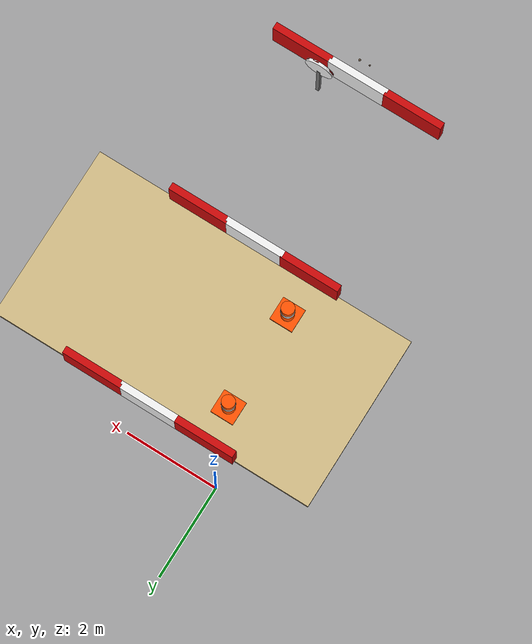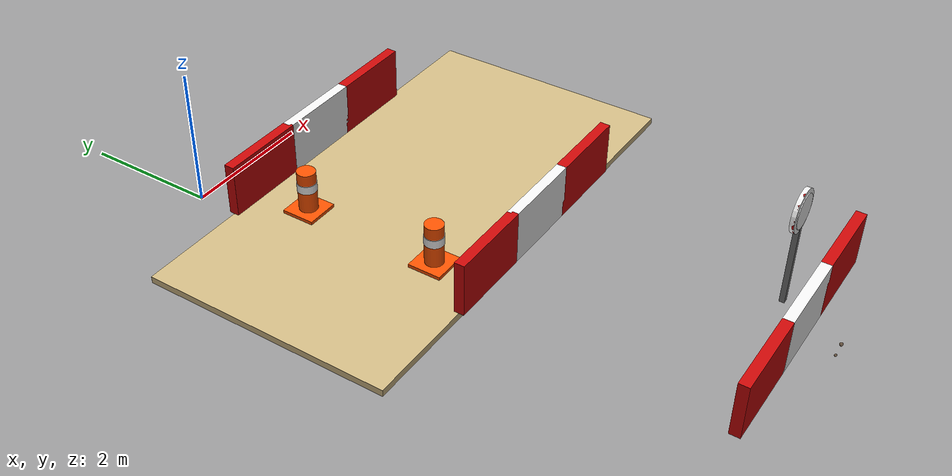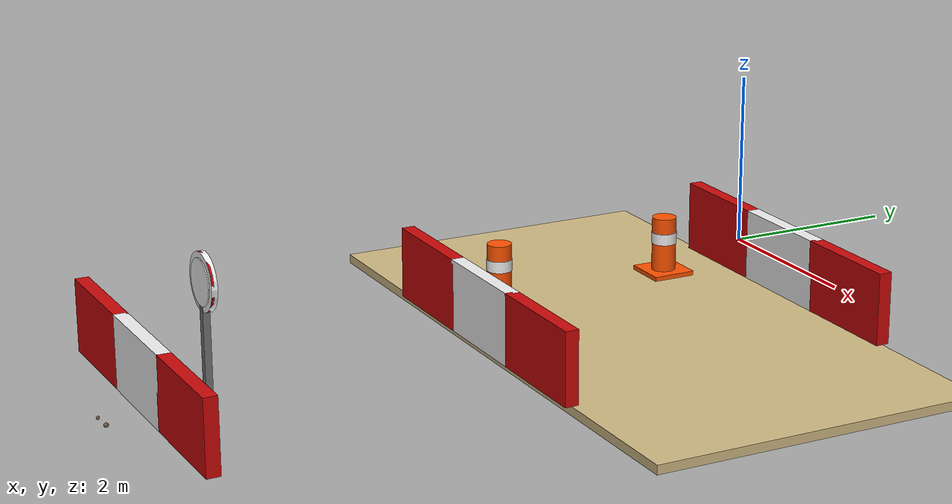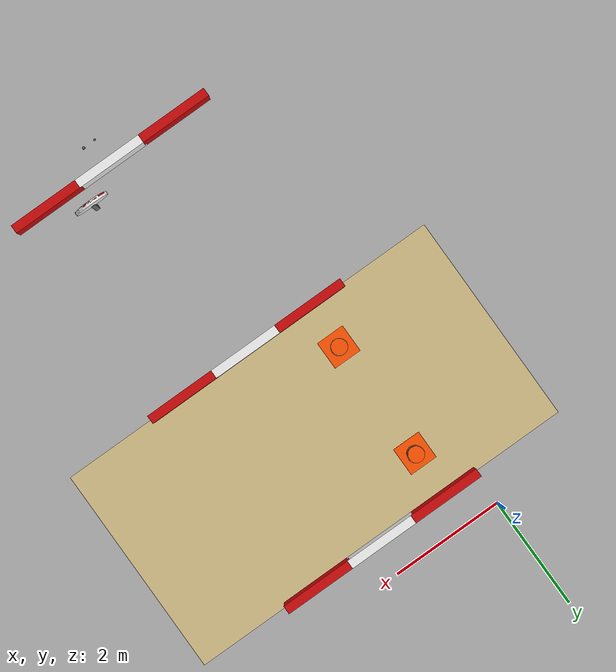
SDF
<sdf version="1.6">
 <world name="evrenos_teknofest_2026">
  <include><uri>model://sun</uri></include>
  <model name="main_course">
   <static>true</static>
   <link name="gravel_17">
    <pose>1.889875 -8.614750 0.010000 0.000000 0.000000 0.000000</pose>
    <collision name="gravel_17_collision">
     <geometry><sphere><radius>0.0182</radius></sphere></geometry>
    </collision>
    <visual name="gravel_17_visual">
     <geometry><sphere><radius>0.0182</radius></sphere></geometry>
     <material><ambient>0.43 0.35 0.27 1</ambient><diffuse>0.43 0.35 0.27 1</diffuse></material>
    </visual>
   </link>
   <link name="gravel_23">
    <pose>2.112375 -8.604250 0.013700 0.000000 0.000000 0.000000</pose>
    <collision name="gravel_23_collision">
     <geometry><sphere><radius>0.0248</radius></sphere></geometry>
    </collision>
    <visual name="gravel_23_visual">
     <geometry><sphere><radius>0.0248</radius></sphere></geometry>
     <material><ambient>0.43 0.35 0.27 1</ambient><diffuse>0.43 0.35 0.27 1</diffuse></material>
    </visual>
   </link>
   <link name="middle_0">
    <pose>0.000000 -2.500000 -0.050000 0.000000 0.000000 0.000000</pose>
    <collision name="middle_0_collision">
     <geometry><box><size>25.000000 3.750000 0.100000</size></box></geometry>
    </collision>
    <visual name="middle_0_visual">
     <geometry><box><size>25.000000 3.750000 0.100000</size></box></geometry>
     <material><ambient>0.82 0.73 0.52 1</ambient><diffuse>0.82 0.73 0.52 1</diffuse></material>
    </visual>
   </link>
   <link name="cone_base_6">
    <pose>0.625000 -3.562500 0.025000 0.000000 0.000000 0.000000</pose>
    <collision name="cone_base_6_collision">
     <geometry><box><size>0.500000 0.500000 0.050000</size></box></geometry>
    </collision>
    <visual name="cone_base_6_visual">
     <geometry><box><size>0.500000 0.500000 0.050000</size></box></geometry>
     <material><ambient>1.0 0.32 0.0 1</ambient><diffuse>1.0 0.32 0.0 1</diffuse></material>
    </visual>
   </link>
   <link name="cone_orange_6">
    <pose>0.625000 -3.562500 0.360000 0.000000 0.000000 0.000000</pose>
    <collision name="cone_orange_6_collision">
     <geometry><cylinder><radius>0.137500</radius><length>0.620000</length></cylinder></geometry>
    </collision>
    <visual name="cone_orange_6_visual">
     <geometry><cylinder><radius>0.137500</radius><length>0.620000</length></cylinder></geometry>
     <material><ambient>1.0 0.32 0.0 1</ambient><diffuse>1.0 0.32 0.0 1</diffuse></material>
    </visual>
   </link>
   <link name="cone_white_6">
    <pose>0.625000 -3.562500 0.430000 0.000000 0.000000 0.000000</pose>
    <collision name="cone_white_6_collision">
     <geometry><cylinder><radius>0.143750</radius><length>0.130000</length></cylinder></geometry>
    </collision>
    <visual name="cone_white_6_visual">
     <geometry><cylinder><radius>0.143750</radius><length>0.130000</length></cylinder></geometry>
     <material><ambient>0.95 0.95 0.95 1</ambient><diffuse>0.95 0.95 0.95 1</diffuse></material>
    </visual>
   </link>
   <link name="cone_base_7">
    <pose>0.625000 -1.437500 0.025000 0.000000 0.000000 0.000000</pose>
    <collision name="cone_base_7_collision">
     <geometry><box><size>0.500000 0.500000 0.050000</size></box></geometry>
    </collision>
    <visual name="cone_base_7_visual">
     <geometry><box><size>0.500000 0.500000 0.050000</size></box></geometry>
     <material><ambient>1.0 0.32 0.0 1</ambient><diffuse>1.0 0.32 0.0 1</diffuse></material>
    </visual>
   </link>
   <link name="cone_orange_7">
    <pose>0.625000 -1.437500 0.360000 0.000000 0.000000 0.000000</pose>
    <collision name="cone_orange_7_collision">
     <geometry><cylinder><radius>0.137500</radius><length>0.620000</length></cylinder></geometry>
    </collision>
    <visual name="cone_orange_7_visual">
     <geometry><cylinder><radius>0.137500</radius><length>0.620000</length></cylinder></geometry>
     <material><ambient>1.0 0.32 0.0 1</ambient><diffuse>1.0 0.32 0.0 1</diffuse></material>
    </visual>
   </link>
   <link name="cone_white_7">
    <pose>0.625000 -1.437500 0.430000 0.000000 0.000000 0.000000</pose>
    <collision name="cone_white_7_collision">
     <geometry><cylinder><radius>0.143750</radius><length>0.130000</length></cylinder></geometry>
    </collision>
    <visual name="cone_white_7_visual">
     <geometry><cylinder><radius>0.143750</radius><length>0.130000</length></cylinder></geometry>
     <material><ambient>0.95 0.95 0.95 1</ambient><diffuse>0.95 0.95 0.95 1</diffuse></material>
    </visual>
   </link>
   <link name="bottom_bar_1_10">
    <pose>0.625000 -8.125000 0.400000 0.000000 0.000000 0.000000</pose>
    <collision name="bottom_bar_1_10_collision">
     <geometry><box><size>1.287500 0.150000 0.800000</size></box></geometry>
    </collision>
    <visual name="bottom_bar_1_10_visual">
     <geometry><box><size>1.287500 0.150000 0.800000</size></box></geometry>
     <material><ambient>0.8 0.03 0.03 1</ambient><diffuse>0.8 0.03 0.03 1</diffuse></material>
    </visual>
   </link>
   <link name="bottom_bar_1_11">
    <pose>1.875000 -8.125000 0.400000 0.000000 0.000000 0.000000</pose>
    <collision name="bottom_bar_1_11_collision">
     <geometry><box><size>1.287500 0.150000 0.800000</size></box></geometry>
    </collision>
    <visual name="bottom_bar_1_11_visual">
     <geometry><box><size>1.287500 0.150000 0.800000</size></box></geometry>
     <material><ambient>0.95 0.95 0.95 1</ambient><diffuse>0.95 0.95 0.95 1</diffuse></material>
    </visual>
   </link>
   <link name="bottom_bar_1_12">
    <pose>3.125000 -8.125000 0.400000 0.000000 0.000000 0.000000</pose>
    <collision name="bottom_bar_1_12_collision">
     <geometry><box><size>1.287500 0.150000 0.800000</size></box></geometry>
    </collision>
    <visual name="bottom_bar_1_12_visual">
     <geometry><box><size>1.287500 0.150000 0.800000</size></box></geometry>
     <material><ambient>0.8 0.03 0.03 1</ambient><diffuse>0.8 0.03 0.03 1</diffuse></material>
    </visual>
   </link>
   <link name="middle_bar_-1_10">
    <pose>0.625000 -4.375000 0.400000 0.000000 0.000000 0.000000</pose>
    <collision name="middle_bar_-1_10_collision">
     <geometry><box><size>1.287500 0.150000 0.800000</size></box></geometry>
    </collision>
    <visual name="middle_bar_-1_10_visual">
     <geometry><box><size>1.287500 0.150000 0.800000</size></box></geometry>
     <material><ambient>0.8 0.03 0.03 1</ambient><diffuse>0.8 0.03 0.03 1</diffuse></material>
    </visual>
   </link>
   <link name="middle_bar_-1_11">
    <pose>1.875000 -4.375000 0.400000 0.000000 0.000000 0.000000</pose>
    <collision name="middle_bar_-1_11_collision">
     <geometry><box><size>1.287500 0.150000 0.800000</size></box></geometry>
    </collision>
    <visual name="middle_bar_-1_11_visual">
     <geometry><box><size>1.287500 0.150000 0.800000</size></box></geometry>
     <material><ambient>0.95 0.95 0.95 1</ambient><diffuse>0.95 0.95 0.95 1</diffuse></material>
    </visual>
   </link>
   <link name="middle_bar_-1_12">
    <pose>3.125000 -4.375000 0.400000 0.000000 0.000000 0.000000</pose>
    <collision name="middle_bar_-1_12_collision">
     <geometry><box><size>1.287500 0.150000 0.800000</size></box></geometry>
    </collision>
    <visual name="middle_bar_-1_12_visual">
     <geometry><box><size>1.287500 0.150000 0.800000</size></box></geometry>
     <material><ambient>0.8 0.03 0.03 1</ambient><diffuse>0.8 0.03 0.03 1</diffuse></material>
    </visual>
   </link>
   <link name="middle_bar_1_10">
    <pose>0.625000 -0.625000 0.400000 0.000000 0.000000 0.000000</pose>
    <collision name="middle_bar_1_10_collision">
     <geometry><box><size>1.287500 0.150000 0.800000</size></box></geometry>
    </collision>
    <visual name="middle_bar_1_10_visual">
     <geometry><box><size>1.287500 0.150000 0.800000</size></box></geometry>
     <material><ambient>0.8 0.03 0.03 1</ambient><diffuse>0.8 0.03 0.03 1</diffuse></material>
    </visual>
   </link>
   <link name="middle_bar_1_11">
    <pose>1.875000 -0.625000 0.400000 0.000000 0.000000 0.000000</pose>
    <collision name="middle_bar_1_11_collision">
     <geometry><box><size>1.287500 0.150000 0.800000</size></box></geometry>
    </collision>
    <visual name="middle_bar_1_11_visual">
     <geometry><box><size>1.287500 0.150000 0.800000</size></box></geometry>
     <material><ambient>0.95 0.95 0.95 1</ambient><diffuse>0.95 0.95 0.95 1</diffuse></material>
    </visual>
   </link>
   <link name="middle_bar_1_12">
    <pose>3.125000 -0.625000 0.400000 0.000000 0.000000 0.000000</pose>
    <collision name="middle_bar_1_12_collision">
     <geometry><box><size>1.287500 0.150000 0.800000</size></box></geometry>
    </collision>
    <visual name="middle_bar_1_12_visual">
     <geometry><box><size>1.287500 0.150000 0.800000</size></box></geometry>
     <material><ambient>0.8 0.03 0.03 1</ambient><diffuse>0.8 0.03 0.03 1</diffuse></material>
    </visual>
   </link>
   <link name="stage2_post">
    <pose>2.500000 -7.687500 0.650000 0.000000 0.000000 0.000000</pose>
    <collision name="stage2_post_collision">
     <geometry><box><size>0.075000 0.075000 1.300000</size></box></geometry>
    </collision>
    <visual name="stage2_post_visual">
     <geometry><box><size>0.075000 0.075000 1.300000</size></box></geometry>
     <material><ambient>0.45 0.45 0.45 1</ambient><diffuse>0.45 0.45 0.45 1</diffuse></material>
    </visual>
   </link>
   <link name="stage2_disc">
    <pose>2.500000 -7.687500 1.450000 1.570796 0.000000 0.000000</pose>
    <visual name="stage2_disc_visual">
     <geometry><cylinder><radius>0.300000</radius><length>0.062500</length></cylinder></geometry>
     <material><ambient>0.95 0.95 0.95 1</ambient><diffuse>0.95 0.95 0.95 1</diffuse></material>
    </visual>
   </link>
   <link name="stage2_redring">
    <pose>2.500000 -7.702500 1.450000 1.570796 0.000000 0.000000</pose>
    <visual name="stage2_redring_visual">
     <geometry><cylinder><radius>0.300000</radius><length>0.022500</length></cylinder></geometry>
     <material><ambient>0.8 0.03 0.03 1</ambient><diffuse>0.8 0.03 0.03 1</diffuse></material>
    </visual>
   </link>
   <link name="stage2_inner">
    <pose>2.500000 -7.717500 1.450000 1.570796 0.000000 0.000000</pose>
    <visual name="stage2_inner_visual">
     <geometry><cylinder><radius>0.240000</radius><length>0.025000</length></cylinder></geometry>
     <material><ambient>0.95 0.95 0.95 1</ambient><diffuse>0.95 0.95 0.95 1</diffuse></material>
    </visual>
   </link>
  </model>
 </world>
</sdf>
